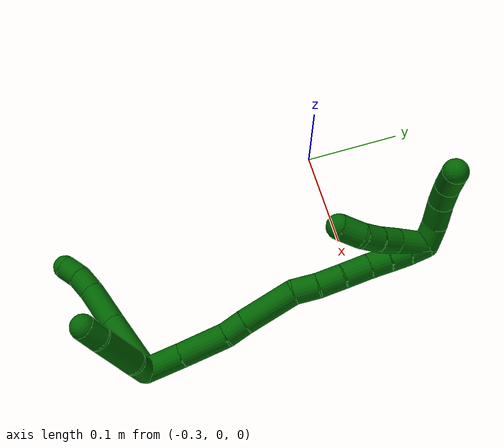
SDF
<sdf version="1.7">
 <world name="default">
  <model name="6">
   <static>0</static>
   <link name="6">
    <collision name="collision-cylinder-e_1_2_8">
     <pose>-0.019618 -0.007527 -0.024318 2.84141 -0.656575 -2.3059</pose>
     <geometry><cylinder><radius>0.0125</radius><length>0.064277</length></cylinder></geometry>
     <surface>
      <friction><ode><mu>1.16</mu><mu2>1.16</mu2><slip1>0</slip1><slip2>0</slip2></ode></friction>
      <contact><ode><kp>1e+06</kp><kd>1</kd><max_vel>0</max_vel><min_depth>0.001</min_depth></ode></contact>
     </surface>
    </collision>
    <visual name="visual-cylinder-e_1_2_8">
     <pose>-0.019618 -0.007527 -0.024318 2.84141 -0.656575 -2.3059</pose>
     <geometry><cylinder><radius>0.0125</radius><length>0.064277</length></cylinder></geometry>
     <material><ambient>0 0.392157 0.003922 1</ambient></material>
    </visual>
    <collision name="collision-cylinder-e_2_8_9">
     <pose>-0.052986 -0.020421 -0.064644 2.81816 -0.683497 -2.28155</pose>
     <geometry><cylinder><radius>0.0125</radius><length>0.043548</length></cylinder></geometry>
     <surface>
      <friction><ode><mu>1.16</mu><mu2>1.16</mu2><slip1>0</slip1><slip2>0</slip2></ode></friction>
      <contact><ode><kp>1e+06</kp><kd>1</kd><max_vel>0</max_vel><min_depth>0.001</min_depth></ode></contact>
     </surface>
    </collision>
    <visual name="visual-cylinder-e_2_8_9">
     <pose>-0.052986 -0.020421 -0.064644 2.81816 -0.683497 -2.28155</pose>
     <geometry><cylinder><radius>0.0125</radius><length>0.043548</length></cylinder></geometry>
     <material><ambient>0 0.392157 0.003922 1</ambient></material>
    </visual>
    <collision name="collision-cylinder-e_3_9_10">
     <pose>-0.073238 -0.029517 -0.088809 2.71272 -0.627163 -1.95879</pose>
     <geometry><cylinder><radius>0.0125</radius><length>0.022157</length></cylinder></geometry>
     <surface>
      <friction><ode><mu>1.16</mu><mu2>1.16</mu2><slip1>0</slip1><slip2>0</slip2></ode></friction>
      <contact><ode><kp>1e+06</kp><kd>1</kd><max_vel>0</max_vel><min_depth>0.001</min_depth></ode></contact>
     </surface>
    </collision>
    <visual name="visual-cylinder-e_3_9_10">
     <pose>-0.073238 -0.029517 -0.088809 2.71272 -0.627163 -1.95879</pose>
     <geometry><cylinder><radius>0.0125</radius><length>0.022157</length></cylinder></geometry>
     <material><ambient>0 0.392157 0.003922 1</ambient></material>
    </visual>
    <collision name="collision-cylinder-e_4_10_6">
     <pose>-0.083707 -0.037979 -0.104844 2.60065 -0.407678 -1.28126</pose>
     <geometry><cylinder><radius>0.0125</radius><length>0.020018</length></cylinder></geometry>
     <surface>
      <friction><ode><mu>1.16</mu><mu2>1.16</mu2><slip1>0</slip1><slip2>0</slip2></ode></friction>
      <contact><ode><kp>1e+06</kp><kd>1</kd><max_vel>0</max_vel><min_depth>0.001</min_depth></ode></contact>
     </surface>
    </collision>
    <visual name="visual-cylinder-e_4_10_6">
     <pose>-0.083707 -0.037979 -0.104844 2.60065 -0.407678 -1.28126</pose>
     <geometry><cylinder><radius>0.0125</radius><length>0.020018</length></cylinder></geometry>
     <material><ambient>0 0.392157 0.003922 1</ambient></material>
    </visual>
    <collision name="collision-cylinder-e_1_2_11">
     <pose>-0.005423 -0.009951 0.006325 1.00461 -0.431074 -0.239374</pose>
     <geometry><cylinder><radius>0.0125</radius><length>0.025955</length></cylinder></geometry>
     <surface>
      <friction><ode><mu>1.16</mu><mu2>1.16</mu2><slip1>0</slip1><slip2>0</slip2></ode></friction>
      <contact><ode><kp>1e+06</kp><kd>1</kd><max_vel>0</max_vel><min_depth>0.001</min_depth></ode></contact>
     </surface>
    </collision>
    <visual name="visual-cylinder-e_1_2_11">
     <pose>-0.005423 -0.009951 0.006325 1.00461 -0.431074 -0.239374</pose>
     <geometry><cylinder><radius>0.0125</radius><length>0.025955</length></cylinder></geometry>
     <material><ambient>0 0.392157 0.003922 1</ambient></material>
    </visual>
    <collision name="collision-cylinder-e_2_11_12">
     <pose>-0.023533 -0.041696 0.019502 1.26615 -0.506925 -0.375692</pose>
     <geometry><cylinder><radius>0.0125</radius><length>0.052265</length></cylinder></geometry>
     <surface>
      <friction><ode><mu>1.16</mu><mu2>1.16</mu2><slip1>0</slip1><slip2>0</slip2></ode></friction>
      <contact><ode><kp>1e+06</kp><kd>1</kd><max_vel>0</max_vel><min_depth>0.001</min_depth></ode></contact>
     </surface>
    </collision>
    <visual name="visual-cylinder-e_2_11_12">
     <pose>-0.023533 -0.041696 0.019502 1.26615 -0.506925 -0.375692</pose>
     <geometry><cylinder><radius>0.0125</radius><length>0.052265</length></cylinder></geometry>
     <material><ambient>0 0.392157 0.003922 1</ambient></material>
    </visual>
    <collision name="collision-cylinder-e_3_12_5">
     <pose>-0.041922 -0.072693 0.027526 1.44424 -0.551127 -0.488186</pose>
     <geometry><cylinder><radius>0.0125</radius><length>0.021779</length></cylinder></geometry>
     <surface>
      <friction><ode><mu>1.16</mu><mu2>1.16</mu2><slip1>0</slip1><slip2>0</slip2></ode></friction>
      <contact><ode><kp>1e+06</kp><kd>1</kd><max_vel>0</max_vel><min_depth>0.001</min_depth></ode></contact>
     </surface>
    </collision>
    <visual name="visual-cylinder-e_3_12_5">
     <pose>-0.041922 -0.072693 0.027526 1.44424 -0.551127 -0.488186</pose>
     <geometry><cylinder><radius>0.0125</radius><length>0.021779</length></cylinder></geometry>
     <material><ambient>0 0.392157 0.003922 1</ambient></material>
    </visual>
    <collision name="collision-cylinder-e_1_2_13">
     <pose>-0.009267 0.013625 0.010348 -0.921246 -0.496371 0.250184</pose>
     <geometry><cylinder><radius>0.0125</radius><length>0.038916</length></cylinder></geometry>
     <surface>
      <friction><ode><mu>1.16</mu><mu2>1.16</mu2><slip1>0</slip1><slip2>0</slip2></ode></friction>
      <contact><ode><kp>1e+06</kp><kd>1</kd><max_vel>0</max_vel><min_depth>0.001</min_depth></ode></contact>
     </surface>
    </collision>
    <visual name="visual-cylinder-e_1_2_13">
     <pose>-0.009267 0.013625 0.010348 -0.921246 -0.496371 0.250184</pose>
     <geometry><cylinder><radius>0.0125</radius><length>0.038916</length></cylinder></geometry>
     <material><ambient>0 0.392157 0.003922 1</ambient></material>
    </visual>
    <collision name="collision-cylinder-e_2_13_14">
     <pose>-0.030088 0.043676 0.033004 -0.927755 -0.512763 0.260813</pose>
     <geometry><cylinder><radius>0.0125</radius><length>0.047106</length></cylinder></geometry>
     <surface>
      <friction><ode><mu>1.16</mu><mu2>1.16</mu2><slip1>0</slip1><slip2>0</slip2></ode></friction>
      <contact><ode><kp>1e+06</kp><kd>1</kd><max_vel>0</max_vel><min_depth>0.001</min_depth></ode></contact>
     </surface>
    </collision>
    <visual name="visual-cylinder-e_2_13_14">
     <pose>-0.030088 0.043676 0.033004 -0.927755 -0.512763 0.260813</pose>
     <geometry><cylinder><radius>0.0125</radius><length>0.047106</length></cylinder></geometry>
     <material><ambient>0 0.392157 0.003922 1</ambient></material>
    </visual>
    <collision name="collision-cylinder-e_3_14_15">
     <pose>-0.048655 0.067076 0.050006 -0.978312 -0.695043 0.380951</pose>
     <geometry><cylinder><radius>0.0125</radius><length>0.021898</length></cylinder></geometry>
     <surface>
      <friction><ode><mu>1.16</mu><mu2>1.16</mu2><slip1>0</slip1><slip2>0</slip2></ode></friction>
      <contact><ode><kp>1e+06</kp><kd>1</kd><max_vel>0</max_vel><min_depth>0.001</min_depth></ode></contact>
     </surface>
    </collision>
    <visual name="visual-cylinder-e_3_14_15">
     <pose>-0.048655 0.067076 0.050006 -0.978312 -0.695043 0.380951</pose>
     <geometry><cylinder><radius>0.0125</radius><length>0.021898</length></cylinder></geometry>
     <material><ambient>0 0.392157 0.003922 1</ambient></material>
    </visual>
    <collision name="collision-cylinder-e_4_15_16">
     <pose>-0.072107 0.091901 0.067717 -0.940769 -0.639813 0.333751</pose>
     <geometry><cylinder><radius>0.0125</radius><length>0.055073</length></cylinder></geometry>
     <surface>
      <friction><ode><mu>1.16</mu><mu2>1.16</mu2><slip1>0</slip1><slip2>0</slip2></ode></friction>
      <contact><ode><kp>1e+06</kp><kd>1</kd><max_vel>0</max_vel><min_depth>0.001</min_depth></ode></contact>
     </surface>
    </collision>
    <visual name="visual-cylinder-e_4_15_16">
     <pose>-0.072107 0.091901 0.067717 -0.940769 -0.639813 0.333751</pose>
     <geometry><cylinder><radius>0.0125</radius><length>0.055073</length></cylinder></geometry>
     <material><ambient>0 0.392157 0.003922 1</ambient></material>
    </visual>
    <collision name="collision-cylinder-e_5_16_17">
     <pose>-0.09256 0.11914 0.087312 -0.95956 -0.336636 0.176376</pose>
     <geometry><cylinder><radius>0.0125</radius><length>0.024295</length></cylinder></geometry>
     <surface>
      <friction><ode><mu>1.16</mu><mu2>1.16</mu2><slip1>0</slip1><slip2>0</slip2></ode></friction>
      <contact><ode><kp>1e+06</kp><kd>1</kd><max_vel>0</max_vel><min_depth>0.001</min_depth></ode></contact>
     </surface>
    </collision>
    <visual name="visual-cylinder-e_5_16_17">
     <pose>-0.09256 0.11914 0.087312 -0.95956 -0.336636 0.176376</pose>
     <geometry><cylinder><radius>0.0125</radius><length>0.024295</length></cylinder></geometry>
     <material><ambient>0 0.392157 0.003922 1</ambient></material>
    </visual>
    <collision name="collision-cylinder-e_6_17_18">
     <pose>-0.101888 0.138597 0.099443 -1.06688 -0.433038 0.258354</pose>
     <geometry><cylinder><radius>0.0125</radius><length>0.025332</length></cylinder></geometry>
     <surface>
      <friction><ode><mu>1.16</mu><mu2>1.16</mu2><slip1>0</slip1><slip2>0</slip2></ode></friction>
      <contact><ode><kp>1e+06</kp><kd>1</kd><max_vel>0</max_vel><min_depth>0.001</min_depth></ode></contact>
     </surface>
    </collision>
    <visual name="visual-cylinder-e_6_17_18">
     <pose>-0.101888 0.138597 0.099443 -1.06688 -0.433038 0.258354</pose>
     <geometry><cylinder><radius>0.0125</radius><length>0.025332</length></cylinder></geometry>
     <material><ambient>0 0.392157 0.003922 1</ambient></material>
    </visual>
    <collision name="collision-cylinder-e_7_18_19">
     <pose>-0.112796 0.159941 0.109785 -1.16901 -0.428293 0.28582</pose>
     <geometry><cylinder><radius>0.0125</radius><length>0.026937</length></cylinder></geometry>
     <surface>
      <friction><ode><mu>1.16</mu><mu2>1.16</mu2><slip1>0</slip1><slip2>0</slip2></ode></friction>
      <contact><ode><kp>1e+06</kp><kd>1</kd><max_vel>0</max_vel><min_depth>0.001</min_depth></ode></contact>
     </surface>
    </collision>
    <visual name="visual-cylinder-e_7_18_19">
     <pose>-0.112796 0.159941 0.109785 -1.16901 -0.428293 0.28582</pose>
     <geometry><cylinder><radius>0.0125</radius><length>0.026937</length></cylinder></geometry>
     <material><ambient>0 0.392157 0.003922 1</ambient></material>
    </visual>
    <collision name="collision-cylinder-e_8_19_20">
     <pose>-0.122239 0.179689 0.118636 -1.12402 -0.388857 0.246758</pose>
     <geometry><cylinder><radius>0.0125</radius><length>0.020306</length></cylinder></geometry>
     <surface>
      <friction><ode><mu>1.16</mu><mu2>1.16</mu2><slip1>0</slip1><slip2>0</slip2></ode></friction>
      <contact><ode><kp>1e+06</kp><kd>1</kd><max_vel>0</max_vel><min_depth>0.001</min_depth></ode></contact>
     </surface>
    </collision>
    <visual name="visual-cylinder-e_8_19_20">
     <pose>-0.122239 0.179689 0.118636 -1.12402 -0.388857 0.246758</pose>
     <geometry><cylinder><radius>0.0125</radius><length>0.020306</length></cylinder></geometry>
     <material><ambient>0 0.392157 0.003922 1</ambient></material>
    </visual>
    <collision name="collision-cylinder-e_9_20_21">
     <pose>-0.129922 0.196794 0.126088 -1.19627 -0.391976 0.268935</pose>
     <geometry><cylinder><radius>0.0125</radius><length>0.020072</length></cylinder></geometry>
     <surface>
      <friction><ode><mu>1.16</mu><mu2>1.16</mu2><slip1>0</slip1><slip2>0</slip2></ode></friction>
      <contact><ode><kp>1e+06</kp><kd>1</kd><max_vel>0</max_vel><min_depth>0.001</min_depth></ode></contact>
     </surface>
    </collision>
    <visual name="visual-cylinder-e_9_20_21">
     <pose>-0.129922 0.196794 0.126088 -1.19627 -0.391976 0.268935</pose>
     <geometry><cylinder><radius>0.0125</radius><length>0.020072</length></cylinder></geometry>
     <material><ambient>0 0.392157 0.003922 1</ambient></material>
    </visual>
    <collision name="collision-cylinder-e_10_21_1">
     <pose>-0.138289 0.213707 0.132878 -1.18151 -0.468752 0.317557</pose>
     <geometry><cylinder><radius>0.0125</radius><length>0.020066</length></cylinder></geometry>
     <surface>
      <friction><ode><mu>1.16</mu><mu2>1.16</mu2><slip1>0</slip1><slip2>0</slip2></ode></friction>
      <contact><ode><kp>1e+06</kp><kd>1</kd><max_vel>0</max_vel><min_depth>0.001</min_depth></ode></contact>
     </surface>
    </collision>
    <visual name="visual-cylinder-e_10_21_1">
     <pose>-0.138289 0.213707 0.132878 -1.18151 -0.468752 0.317557</pose>
     <geometry><cylinder><radius>0.0125</radius><length>0.020066</length></cylinder></geometry>
     <material><ambient>0 0.392157 0.003922 1</ambient></material>
    </visual>
    <collision name="collision-cylinder-e_1_1_22">
     <pose>-0.153353 0.221802 0.141356 0.036629 -1.121 -0.022992</pose>
     <geometry><cylinder><radius>0.0125</radius><length>0.023389</length></cylinder></geometry>
     <surface>
      <friction><ode><mu>1.16</mu><mu2>1.16</mu2><slip1>0</slip1><slip2>0</slip2></ode></friction>
      <contact><ode><kp>1e+06</kp><kd>1</kd><max_vel>0</max_vel><min_depth>0.001</min_depth></ode></contact>
     </surface>
    </collision>
    <visual name="visual-cylinder-e_1_1_22">
     <pose>-0.153353 0.221802 0.141356 0.036629 -1.121 -0.022992</pose>
     <geometry><cylinder><radius>0.0125</radius><length>0.023389</length></cylinder></geometry>
     <material><ambient>0 0.392157 0.003922 1</ambient></material>
    </visual>
    <collision name="collision-cylinder-e_2_22_23">
     <pose>-0.174516 0.217549 0.153925 0.497577 -0.895149 -0.242725</pose>
     <geometry><cylinder><radius>0.0125</radius><length>0.027249</length></cylinder></geometry>
     <surface>
      <friction><ode><mu>1.16</mu><mu2>1.16</mu2><slip1>0</slip1><slip2>0</slip2></ode></friction>
      <contact><ode><kp>1e+06</kp><kd>1</kd><max_vel>0</max_vel><min_depth>0.001</min_depth></ode></contact>
     </surface>
    </collision>
    <visual name="visual-cylinder-e_2_22_23">
     <pose>-0.174516 0.217549 0.153925 0.497577 -0.895149 -0.242725</pose>
     <geometry><cylinder><radius>0.0125</radius><length>0.027249</length></cylinder></geometry>
     <material><ambient>0 0.392157 0.003922 1</ambient></material>
    </visual>
    <collision name="collision-cylinder-e_3_23_24">
     <pose>-0.192876 0.20939 0.169238 0.481787 -0.719031 -0.184143</pose>
     <geometry><cylinder><radius>0.0125</radius><length>0.023471</length></cylinder></geometry>
     <surface>
      <friction><ode><mu>1.16</mu><mu2>1.16</mu2><slip1>0</slip1><slip2>0</slip2></ode></friction>
      <contact><ode><kp>1e+06</kp><kd>1</kd><max_vel>0</max_vel><min_depth>0.001</min_depth></ode></contact>
     </surface>
    </collision>
    <visual name="visual-cylinder-e_3_23_24">
     <pose>-0.192876 0.20939 0.169238 0.481787 -0.719031 -0.184143</pose>
     <geometry><cylinder><radius>0.0125</radius><length>0.023471</length></cylinder></geometry>
     <material><ambient>0 0.392157 0.003922 1</ambient></material>
    </visual>
    <collision name="collision-cylinder-e_4_24_4">
     <pose>-0.206913 0.199898 0.186995 0.498052 -0.508821 -0.132069</pose>
     <geometry><cylinder><radius>0.0125</radius><length>0.025891</length></cylinder></geometry>
     <surface>
      <friction><ode><mu>1.16</mu><mu2>1.16</mu2><slip1>0</slip1><slip2>0</slip2></ode></friction>
      <contact><ode><kp>1e+06</kp><kd>1</kd><max_vel>0</max_vel><min_depth>0.001</min_depth></ode></contact>
     </surface>
    </collision>
    <visual name="visual-cylinder-e_4_24_4">
     <pose>-0.206913 0.199898 0.186995 0.498052 -0.508821 -0.132069</pose>
     <geometry><cylinder><radius>0.0125</radius><length>0.025891</length></cylinder></geometry>
     <material><ambient>0 0.392157 0.003922 1</ambient></material>
    </visual>
    <collision name="collision-cylinder-e_1_1_25">
     <pose>-0.14387 0.205273 0.133452 1.7381 -0.061774 -0.073072</pose>
     <geometry><cylinder><radius>0.0125</radius><length>0.033968</length></cylinder></geometry>
     <surface>
      <friction><ode><mu>1.16</mu><mu2>1.16</mu2><slip1>0</slip1><slip2>0</slip2></ode></friction>
      <contact><ode><kp>1e+06</kp><kd>1</kd><max_vel>0</max_vel><min_depth>0.001</min_depth></ode></contact>
     </surface>
    </collision>
    <visual name="visual-cylinder-e_1_1_25">
     <pose>-0.14387 0.205273 0.133452 1.7381 -0.061774 -0.073072</pose>
     <geometry><cylinder><radius>0.0125</radius><length>0.033968</length></cylinder></geometry>
     <material><ambient>0 0.392157 0.003922 1</ambient></material>
    </visual>
    <collision name="collision-cylinder-e_2_25_26">
     <pose>-0.145252 0.177793 0.130871 1.54835 -0.030971 -0.030283</pose>
     <geometry><cylinder><radius>0.0125</radius><length>0.021548</length></cylinder></geometry>
     <surface>
      <friction><ode><mu>1.16</mu><mu2>1.16</mu2><slip1>0</slip1><slip2>0</slip2></ode></friction>
      <contact><ode><kp>1e+06</kp><kd>1</kd><max_vel>0</max_vel><min_depth>0.001</min_depth></ode></contact>
     </surface>
    </collision>
    <visual name="visual-cylinder-e_2_25_26">
     <pose>-0.145252 0.177793 0.130871 1.54835 -0.030971 -0.030283</pose>
     <geometry><cylinder><radius>0.0125</radius><length>0.021548</length></cylinder></geometry>
     <material><ambient>0 0.392157 0.003922 1</ambient></material>
    </visual>
    <collision name="collision-cylinder-e_3_26_27">
     <pose>-0.146898 0.156804 0.130951 1.58666 -0.127668 -0.129704</pose>
     <geometry><cylinder><radius>0.0125</radius><length>0.020616</length></cylinder></geometry>
     <surface>
      <friction><ode><mu>1.16</mu><mu2>1.16</mu2><slip1>0</slip1><slip2>0</slip2></ode></friction>
      <contact><ode><kp>1e+06</kp><kd>1</kd><max_vel>0</max_vel><min_depth>0.001</min_depth></ode></contact>
     </surface>
    </collision>
    <visual name="visual-cylinder-e_3_26_27">
     <pose>-0.146898 0.156804 0.130951 1.58666 -0.127668 -0.129704</pose>
     <geometry><cylinder><radius>0.0125</radius><length>0.020616</length></cylinder></geometry>
     <material><ambient>0 0.392157 0.003922 1</ambient></material>
    </visual>
    <collision name="collision-cylinder-e_4_27_3">
     <pose>-0.151676 0.135757 0.127146 1.89539 -0.294627 -0.407269</pose>
     <geometry><cylinder><radius>0.0125</radius><length>0.023868</length></cylinder></geometry>
     <surface>
      <friction><ode><mu>1.16</mu><mu2>1.16</mu2><slip1>0</slip1><slip2>0</slip2></ode></friction>
      <contact><ode><kp>1e+06</kp><kd>1</kd><max_vel>0</max_vel><min_depth>0.001</min_depth></ode></contact>
     </surface>
    </collision>
    <visual name="visual-cylinder-e_4_27_3">
     <pose>-0.151676 0.135757 0.127146 1.89539 -0.294627 -0.407269</pose>
     <geometry><cylinder><radius>0.0125</radius><length>0.023868</length></cylinder></geometry>
     <material><ambient>0 0.392157 0.003922 1</ambient></material>
    </visual>
    <collision name="collision-sphere-3">
     <pose>-0.155142 0.124934 0.123504 0 -0 0</pose>
     <geometry><sphere><radius>0.0125</radius></sphere></geometry>
     <surface>
      <friction><ode><mu>1.16</mu><mu2>1.16</mu2><slip1>0</slip1><slip2>0</slip2></ode></friction>
      <contact><ode><kp>1e+06</kp><kd>1</kd><max_vel>0</max_vel><min_depth>0.001</min_depth></ode></contact>
     </surface>
    </collision>
    <visual name="visual-sphere-3">
     <pose>-0.155142 0.124934 0.123504 0 -0 0</pose>
     <geometry><sphere><radius>0.0125</radius></sphere></geometry>
     <material><ambient>0 0.392157 0.003922 1</ambient></material>
    </visual>
    <collision name="collision-sphere-27">
     <pose>-0.148211 0.146581 0.130788 0 -0 0</pose>
     <geometry><sphere><radius>0.0125</radius></sphere></geometry>
     <surface>
      <friction><ode><mu>1.16</mu><mu2>1.16</mu2><slip1>0</slip1><slip2>0</slip2></ode></friction>
      <contact><ode><kp>1e+06</kp><kd>1</kd><max_vel>0</max_vel><min_depth>0.001</min_depth></ode></contact>
     </surface>
    </collision>
    <visual name="visual-sphere-27">
     <pose>-0.148211 0.146581 0.130788 0 -0 0</pose>
     <geometry><sphere><radius>0.0125</radius></sphere></geometry>
     <material><ambient>0 0.392157 0.003922 1</ambient></material>
    </visual>
    <collision name="collision-sphere-26">
     <pose>-0.145586 0.167027 0.131113 0 -0 0</pose>
     <geometry><sphere><radius>0.0125</radius></sphere></geometry>
     <surface>
      <friction><ode><mu>1.16</mu><mu2>1.16</mu2><slip1>0</slip1><slip2>0</slip2></ode></friction>
      <contact><ode><kp>1e+06</kp><kd>1</kd><max_vel>0</max_vel><min_depth>0.001</min_depth></ode></contact>
     </surface>
    </collision>
    <visual name="visual-sphere-26">
     <pose>-0.145586 0.167027 0.131113 0 -0 0</pose>
     <geometry><sphere><radius>0.0125</radius></sphere></geometry>
     <material><ambient>0 0.392157 0.003922 1</ambient></material>
    </visual>
    <collision name="collision-sphere-25">
     <pose>-0.144919 0.188558 0.130629 0 -0 0</pose>
     <geometry><sphere><radius>0.0125</radius></sphere></geometry>
     <surface>
      <friction><ode><mu>1.16</mu><mu2>1.16</mu2><slip1>0</slip1><slip2>0</slip2></ode></friction>
      <contact><ode><kp>1e+06</kp><kd>1</kd><max_vel>0</max_vel><min_depth>0.001</min_depth></ode></contact>
     </surface>
    </collision>
    <visual name="visual-sphere-25">
     <pose>-0.144919 0.188558 0.130629 0 -0 0</pose>
     <geometry><sphere><radius>0.0125</radius></sphere></geometry>
     <material><ambient>0 0.392157 0.003922 1</ambient></material>
    </visual>
    <collision name="collision-sphere-4">
     <pose>-0.213219 0.194497 0.196927 0 -0 0</pose>
     <geometry><sphere><radius>0.0125</radius></sphere></geometry>
     <surface>
      <friction><ode><mu>1.16</mu><mu2>1.16</mu2><slip1>0</slip1><slip2>0</slip2></ode></friction>
      <contact><ode><kp>1e+06</kp><kd>1</kd><max_vel>0</max_vel><min_depth>0.001</min_depth></ode></contact>
     </surface>
    </collision>
    <visual name="visual-sphere-4">
     <pose>-0.213219 0.194497 0.196927 0 -0 0</pose>
     <geometry><sphere><radius>0.0125</radius></sphere></geometry>
     <material><ambient>0 0.392157 0.003922 1</ambient></material>
    </visual>
    <collision name="collision-sphere-24">
     <pose>-0.200606 0.205299 0.177063 0 -0 0</pose>
     <geometry><sphere><radius>0.0125</radius></sphere></geometry>
     <surface>
      <friction><ode><mu>1.16</mu><mu2>1.16</mu2><slip1>0</slip1><slip2>0</slip2></ode></friction>
      <contact><ode><kp>1e+06</kp><kd>1</kd><max_vel>0</max_vel><min_depth>0.001</min_depth></ode></contact>
     </surface>
    </collision>
    <visual name="visual-sphere-24">
     <pose>-0.200606 0.205299 0.177063 0 -0 0</pose>
     <geometry><sphere><radius>0.0125</radius></sphere></geometry>
     <material><ambient>0 0.392157 0.003922 1</ambient></material>
    </visual>
    <collision name="collision-sphere-23">
     <pose>-0.185147 0.213482 0.161413 0 -0 0</pose>
     <geometry><sphere><radius>0.0125</radius></sphere></geometry>
     <surface>
      <friction><ode><mu>1.16</mu><mu2>1.16</mu2><slip1>0</slip1><slip2>0</slip2></ode></friction>
      <contact><ode><kp>1e+06</kp><kd>1</kd><max_vel>0</max_vel><min_depth>0.001</min_depth></ode></contact>
     </surface>
    </collision>
    <visual name="visual-sphere-23">
     <pose>-0.185147 0.213482 0.161413 0 -0 0</pose>
     <geometry><sphere><radius>0.0125</radius></sphere></geometry>
     <material><ambient>0 0.392157 0.003922 1</ambient></material>
    </visual>
    <collision name="collision-sphere-22">
     <pose>-0.163884 0.221616 0.146438 0 -0 0</pose>
     <geometry><sphere><radius>0.0125</radius></sphere></geometry>
     <surface>
      <friction><ode><mu>1.16</mu><mu2>1.16</mu2><slip1>0</slip1><slip2>0</slip2></ode></friction>
      <contact><ode><kp>1e+06</kp><kd>1</kd><max_vel>0</max_vel><min_depth>0.001</min_depth></ode></contact>
     </surface>
    </collision>
    <visual name="visual-sphere-22">
     <pose>-0.163884 0.221616 0.146438 0 -0 0</pose>
     <geometry><sphere><radius>0.0125</radius></sphere></geometry>
     <material><ambient>0 0.392157 0.003922 1</ambient></material>
    </visual>
    <collision name="collision-sphere-1">
     <pose>-0.142822 0.221988 0.136275 0 -0 0</pose>
     <geometry><sphere><radius>0.0125</radius></sphere></geometry>
     <surface>
      <friction><ode><mu>1.16</mu><mu2>1.16</mu2><slip1>0</slip1><slip2>0</slip2></ode></friction>
      <contact><ode><kp>1e+06</kp><kd>1</kd><max_vel>0</max_vel><min_depth>0.001</min_depth></ode></contact>
     </surface>
    </collision>
    <visual name="visual-sphere-1">
     <pose>-0.142822 0.221988 0.136275 0 -0 0</pose>
     <geometry><sphere><radius>0.0125</radius></sphere></geometry>
     <material><ambient>0 0.392157 0.003922 1</ambient></material>
    </visual>
    <collision name="collision-sphere-21">
     <pose>-0.133756 0.205426 0.129481 0 -0 0</pose>
     <geometry><sphere><radius>0.0125</radius></sphere></geometry>
     <surface>
      <friction><ode><mu>1.16</mu><mu2>1.16</mu2><slip1>0</slip1><slip2>0</slip2></ode></friction>
      <contact><ode><kp>1e+06</kp><kd>1</kd><max_vel>0</max_vel><min_depth>0.001</min_depth></ode></contact>
     </surface>
    </collision>
    <visual name="visual-sphere-21">
     <pose>-0.133756 0.205426 0.129481 0 -0 0</pose>
     <geometry><sphere><radius>0.0125</radius></sphere></geometry>
     <material><ambient>0 0.392157 0.003922 1</ambient></material>
    </visual>
    <collision name="collision-sphere-11">
     <pose>-0.010845 -0.019901 0.012649 0 -0 0</pose>
     <geometry><sphere><radius>0.0125</radius></sphere></geometry>
     <surface>
      <friction><ode><mu>1.16</mu><mu2>1.16</mu2><slip1>0</slip1><slip2>0</slip2></ode></friction>
      <contact><ode><kp>1e+06</kp><kd>1</kd><max_vel>0</max_vel><min_depth>0.001</min_depth></ode></contact>
     </surface>
    </collision>
    <visual name="visual-sphere-11">
     <pose>-0.010845 -0.019901 0.012649 0 -0 0</pose>
     <geometry><sphere><radius>0.0125</radius></sphere></geometry>
     <material><ambient>0 0.392157 0.003922 1</ambient></material>
    </visual>
    <collision name="collision-sphere-6">
     <pose>-0.087676 -0.04271 -0.11272 0 -0 0</pose>
     <geometry><sphere><radius>0.0125</radius></sphere></geometry>
     <surface>
      <friction><ode><mu>1.16</mu><mu2>1.16</mu2><slip1>0</slip1><slip2>0</slip2></ode></friction>
      <contact><ode><kp>1e+06</kp><kd>1</kd><max_vel>0</max_vel><min_depth>0.001</min_depth></ode></contact>
     </surface>
    </collision>
    <visual name="visual-sphere-6">
     <pose>-0.087676 -0.04271 -0.11272 0 -0 0</pose>
     <geometry><sphere><radius>0.0125</radius></sphere></geometry>
     <material><ambient>0 0.392157 0.003922 1</ambient></material>
    </visual>
    <collision name="collision-sphere-10">
     <pose>-0.079739 -0.033247 -0.096967 0 -0 0</pose>
     <geometry><sphere><radius>0.0125</radius></sphere></geometry>
     <surface>
      <friction><ode><mu>1.16</mu><mu2>1.16</mu2><slip1>0</slip1><slip2>0</slip2></ode></friction>
      <contact><ode><kp>1e+06</kp><kd>1</kd><max_vel>0</max_vel><min_depth>0.001</min_depth></ode></contact>
     </surface>
    </collision>
    <visual name="visual-sphere-10">
     <pose>-0.079739 -0.033247 -0.096967 0 -0 0</pose>
     <geometry><sphere><radius>0.0125</radius></sphere></geometry>
     <material><ambient>0 0.392157 0.003922 1</ambient></material>
    </visual>
    <collision name="collision-sphere-9">
     <pose>-0.066736 -0.025786 -0.080651 0 -0 0</pose>
     <geometry><sphere><radius>0.0125</radius></sphere></geometry>
     <surface>
      <friction><ode><mu>1.16</mu><mu2>1.16</mu2><slip1>0</slip1><slip2>0</slip2></ode></friction>
      <contact><ode><kp>1e+06</kp><kd>1</kd><max_vel>0</max_vel><min_depth>0.001</min_depth></ode></contact>
     </surface>
    </collision>
    <visual name="visual-sphere-9">
     <pose>-0.066736 -0.025786 -0.080651 0 -0 0</pose>
     <geometry><sphere><radius>0.0125</radius></sphere></geometry>
     <material><ambient>0 0.392157 0.003922 1</ambient></material>
    </visual>
    <collision name="collision-sphere-2">
     <geometry><sphere><radius>0.0125</radius></sphere></geometry>
     <surface>
      <friction><ode><mu>1.16</mu><mu2>1.16</mu2><slip1>0</slip1><slip2>0</slip2></ode></friction>
      <contact><ode><kp>1e+06</kp><kd>1</kd><max_vel>0</max_vel><min_depth>0.001</min_depth></ode></contact>
     </surface>
    </collision>
    <visual name="visual-sphere-2">
     <geometry><sphere><radius>0.0125</radius></sphere></geometry>
     <material><ambient>0 0.392157 0.003922 1</ambient></material>
    </visual>
    <collision name="collision-sphere-19">
     <pose>-0.11839 0.171217 0.114577 0 -0 0</pose>
     <geometry><sphere><radius>0.0125</radius></sphere></geometry>
     <surface>
      <friction><ode><mu>1.16</mu><mu2>1.16</mu2><slip1>0</slip1><slip2>0</slip2></ode></friction>
      <contact><ode><kp>1e+06</kp><kd>1</kd><max_vel>0</max_vel><min_depth>0.001</min_depth></ode></contact>
     </surface>
    </collision>
    <visual name="visual-sphere-19">
     <pose>-0.11839 0.171217 0.114577 0 -0 0</pose>
     <geometry><sphere><radius>0.0125</radius></sphere></geometry>
     <material><ambient>0 0.392157 0.003922 1</ambient></material>
    </visual>
    <collision name="collision-sphere-8">
     <pose>-0.039235 -0.015055 -0.048636 0 -0 0</pose>
     <geometry><sphere><radius>0.0125</radius></sphere></geometry>
     <surface>
      <friction><ode><mu>1.16</mu><mu2>1.16</mu2><slip1>0</slip1><slip2>0</slip2></ode></friction>
      <contact><ode><kp>1e+06</kp><kd>1</kd><max_vel>0</max_vel><min_depth>0.001</min_depth></ode></contact>
     </surface>
    </collision>
    <visual name="visual-sphere-8">
     <pose>-0.039235 -0.015055 -0.048636 0 -0 0</pose>
     <geometry><sphere><radius>0.0125</radius></sphere></geometry>
     <material><ambient>0 0.392157 0.003922 1</ambient></material>
    </visual>
    <collision name="collision-sphere-12">
     <pose>-0.03622 -0.06349 0.026355 0 -0 0</pose>
     <geometry><sphere><radius>0.0125</radius></sphere></geometry>
     <surface>
      <friction><ode><mu>1.16</mu><mu2>1.16</mu2><slip1>0</slip1><slip2>0</slip2></ode></friction>
      <contact><ode><kp>1e+06</kp><kd>1</kd><max_vel>0</max_vel><min_depth>0.001</min_depth></ode></contact>
     </surface>
    </collision>
    <visual name="visual-sphere-12">
     <pose>-0.03622 -0.06349 0.026355 0 -0 0</pose>
     <geometry><sphere><radius>0.0125</radius></sphere></geometry>
     <material><ambient>0 0.392157 0.003922 1</ambient></material>
    </visual>
    <collision name="collision-sphere-5">
     <pose>-0.047624 -0.081896 0.028697 0 -0 0</pose>
     <geometry><sphere><radius>0.0125</radius></sphere></geometry>
     <surface>
      <friction><ode><mu>1.16</mu><mu2>1.16</mu2><slip1>0</slip1><slip2>0</slip2></ode></friction>
      <contact><ode><kp>1e+06</kp><kd>1</kd><max_vel>0</max_vel><min_depth>0.001</min_depth></ode></contact>
     </surface>
    </collision>
    <visual name="visual-sphere-5">
     <pose>-0.047624 -0.081896 0.028697 0 -0 0</pose>
     <geometry><sphere><radius>0.0125</radius></sphere></geometry>
     <material><ambient>0 0.392157 0.003922 1</ambient></material>
    </visual>
    <collision name="collision-sphere-13">
     <pose>-0.018533 0.027251 0.020697 0 -0 0</pose>
     <geometry><sphere><radius>0.0125</radius></sphere></geometry>
     <surface>
      <friction><ode><mu>1.16</mu><mu2>1.16</mu2><slip1>0</slip1><slip2>0</slip2></ode></friction>
      <contact><ode><kp>1e+06</kp><kd>1</kd><max_vel>0</max_vel><min_depth>0.001</min_depth></ode></contact>
     </surface>
    </collision>
    <visual name="visual-sphere-13">
     <pose>-0.018533 0.027251 0.020697 0 -0 0</pose>
     <geometry><sphere><radius>0.0125</radius></sphere></geometry>
     <material><ambient>0 0.392157 0.003922 1</ambient></material>
    </visual>
    <collision name="collision-sphere-14">
     <pose>-0.041643 0.060101 0.045311 0 -0 0</pose>
     <geometry><sphere><radius>0.0125</radius></sphere></geometry>
     <surface>
      <friction><ode><mu>1.16</mu><mu2>1.16</mu2><slip1>0</slip1><slip2>0</slip2></ode></friction>
      <contact><ode><kp>1e+06</kp><kd>1</kd><max_vel>0</max_vel><min_depth>0.001</min_depth></ode></contact>
     </surface>
    </collision>
    <visual name="visual-sphere-14">
     <pose>-0.041643 0.060101 0.045311 0 -0 0</pose>
     <geometry><sphere><radius>0.0125</radius></sphere></geometry>
     <material><ambient>0 0.392157 0.003922 1</ambient></material>
    </visual>
    <collision name="collision-sphere-15">
     <pose>-0.055667 0.074052 0.054702 0 -0 0</pose>
     <geometry><sphere><radius>0.0125</radius></sphere></geometry>
     <surface>
      <friction><ode><mu>1.16</mu><mu2>1.16</mu2><slip1>0</slip1><slip2>0</slip2></ode></friction>
      <contact><ode><kp>1e+06</kp><kd>1</kd><max_vel>0</max_vel><min_depth>0.001</min_depth></ode></contact>
     </surface>
    </collision>
    <visual name="visual-sphere-15">
     <pose>-0.055667 0.074052 0.054702 0 -0 0</pose>
     <geometry><sphere><radius>0.0125</radius></sphere></geometry>
     <material><ambient>0 0.392157 0.003922 1</ambient></material>
    </visual>
    <collision name="collision-sphere-16">
     <pose>-0.088548 0.10975 0.080732 0 -0 0</pose>
     <geometry><sphere><radius>0.0125</radius></sphere></geometry>
     <surface>
      <friction><ode><mu>1.16</mu><mu2>1.16</mu2><slip1>0</slip1><slip2>0</slip2></ode></friction>
      <contact><ode><kp>1e+06</kp><kd>1</kd><max_vel>0</max_vel><min_depth>0.001</min_depth></ode></contact>
     </surface>
    </collision>
    <visual name="visual-sphere-16">
     <pose>-0.088548 0.10975 0.080732 0 -0 0</pose>
     <geometry><sphere><radius>0.0125</radius></sphere></geometry>
     <material><ambient>0 0.392157 0.003922 1</ambient></material>
    </visual>
    <collision name="collision-sphere-17">
     <pose>-0.096573 0.128529 0.093891 0 -0 0</pose>
     <geometry><sphere><radius>0.0125</radius></sphere></geometry>
     <surface>
      <friction><ode><mu>1.16</mu><mu2>1.16</mu2><slip1>0</slip1><slip2>0</slip2></ode></friction>
      <contact><ode><kp>1e+06</kp><kd>1</kd><max_vel>0</max_vel><min_depth>0.001</min_depth></ode></contact>
     </surface>
    </collision>
    <visual name="visual-sphere-17">
     <pose>-0.096573 0.128529 0.093891 0 -0 0</pose>
     <geometry><sphere><radius>0.0125</radius></sphere></geometry>
     <material><ambient>0 0.392157 0.003922 1</ambient></material>
    </visual>
    <collision name="collision-sphere-18">
     <pose>-0.107203 0.148665 0.104994 0 -0 0</pose>
     <geometry><sphere><radius>0.0125</radius></sphere></geometry>
     <surface>
      <friction><ode><mu>1.16</mu><mu2>1.16</mu2><slip1>0</slip1><slip2>0</slip2></ode></friction>
      <contact><ode><kp>1e+06</kp><kd>1</kd><max_vel>0</max_vel><min_depth>0.001</min_depth></ode></contact>
     </surface>
    </collision>
    <visual name="visual-sphere-18">
     <pose>-0.107203 0.148665 0.104994 0 -0 0</pose>
     <geometry><sphere><radius>0.0125</radius></sphere></geometry>
     <material><ambient>0 0.392157 0.003922 1</ambient></material>
    </visual>
    <collision name="collision-sphere-20">
     <pose>-0.126088 0.188162 0.122695 0 -0 0</pose>
     <geometry><sphere><radius>0.0125</radius></sphere></geometry>
     <surface>
      <friction><ode><mu>1.16</mu><mu2>1.16</mu2><slip1>0</slip1><slip2>0</slip2></ode></friction>
      <contact><ode><kp>1e+06</kp><kd>1</kd><max_vel>0</max_vel><min_depth>0.001</min_depth></ode></contact>
     </surface>
    </collision>
    <visual name="visual-sphere-20">
     <pose>-0.126088 0.188162 0.122695 0 -0 0</pose>
     <geometry><sphere><radius>0.0125</radius></sphere></geometry>
     <material><ambient>0 0.392157 0.003922 1</ambient></material>
    </visual>
    <inertial>
     <pose>-0.08612 0.084524 0.059634 0 -0 0</pose>
     <mass>0.75</mass>
     <inertia><ixx>4e-06</ixx><ixy>0</ixy><ixz>0</ixz><iyy>5.2e-05</iyy><iyz>0</iyz><izz>7.3e-05</izz></inertia>
    </inertial>
   </link>
   <pose>-0.111988 -0.229492 0.035447 -0.605138 0.441223 -0.379468</pose>
  </model>
 </world>
</sdf>
